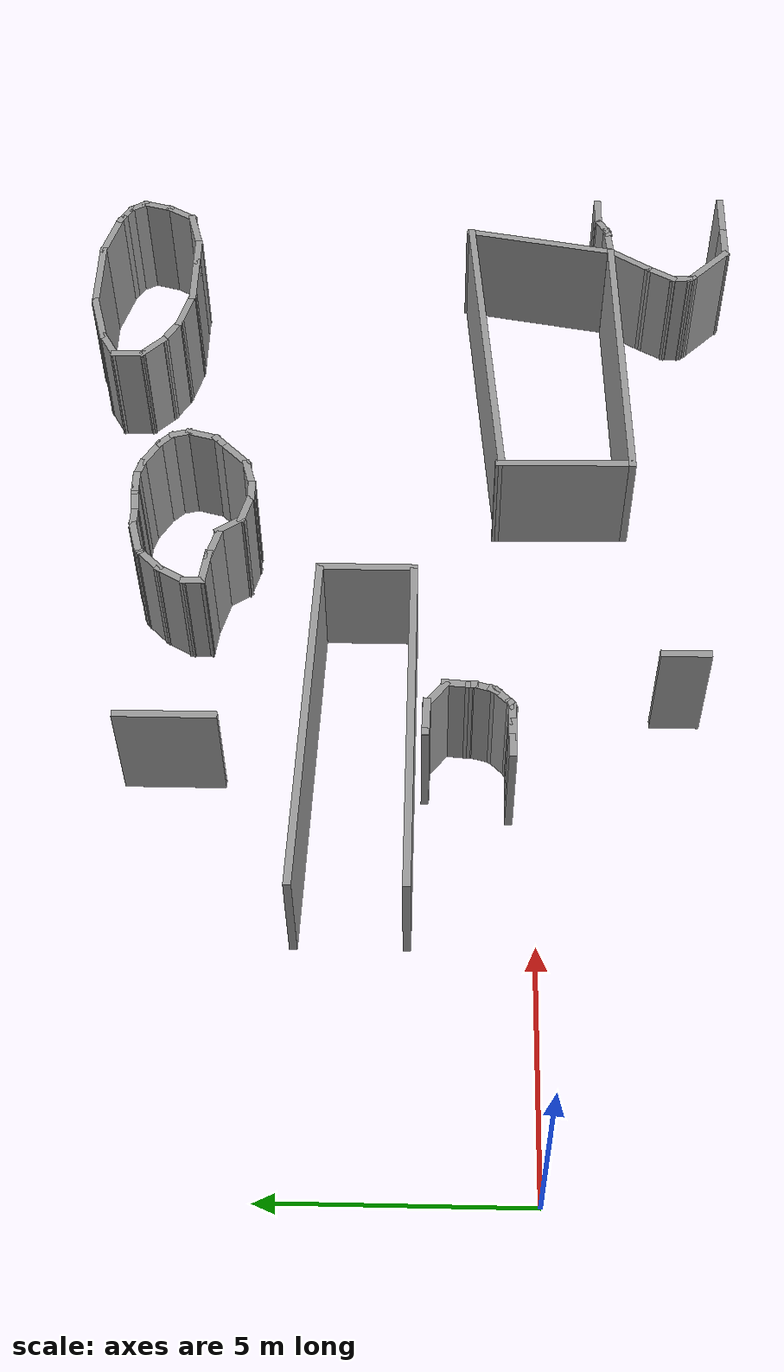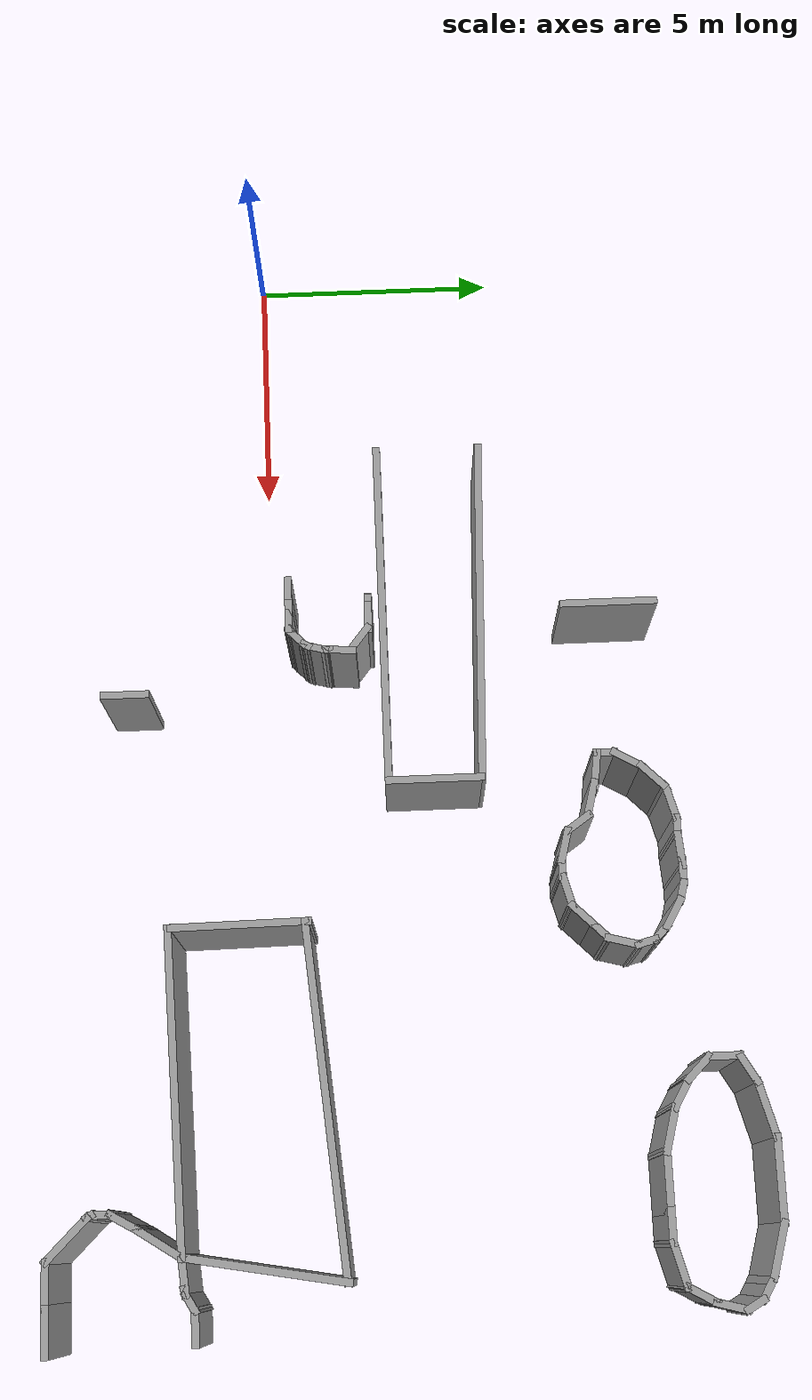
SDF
<sdf version="1.7">
 <model name="complex">
  <pose>10.9367 2.58093 0 0 -0 0</pose>
  <link name="Wall_189">
   <collision name="Wall_189_Collision">
    <geometry><box><size>2 0.15 2.5</size></box></geometry>
    <pose>0 0 1.25 0 -0 0</pose>
   </collision>
   <visual name="Wall_189_Visual">
    <pose>0 0 1.25 0 -0 0</pose>
    <geometry><box><size>2 0.15 2.5</size></box></geometry>
    <material>
     <script><uri>file://media/materials/scripts/gazebo.material</uri><name>Gazebo/Grey</name></script>
     <ambient>1 1 1 1</ambient>
    </material>
    <meta><layer>0</layer></meta>
   </visual>
   <pose>-2.45459 4.47638 0 0 -0 1.5708</pose>
  </link>
  <link name="Wall_193">
   <collision name="Wall_193_Collision">
    <geometry><box><size>7.25 0.15 2.5</size></box></geometry>
    <pose>0 0 1.25 0 -0 0</pose>
   </collision>
   <visual name="Wall_193_Visual">
    <pose>0 0 1.25 0 -0 0</pose>
    <geometry><box><size>7.25 0.15 2.5</size></box></geometry>
    <material>
     <script><uri>file://media/materials/scripts/gazebo.material</uri><name>Gazebo/Grey</name></script>
     <ambient>1 1 1 1</ambient>
    </material>
    <meta><layer>0</layer></meta>
   </visual>
   <pose>-2.42278 -0.165825 0 0 -0 0</pose>
  </link>
  <link name="Wall_194">
   <collision name="Wall_194_Collision">
    <geometry><box><size>2.00149 0.15 2.5</size></box></geometry>
    <pose>0 0 1.25 0 -0 0</pose>
   </collision>
   <visual name="Wall_194_Visual">
    <pose>0 0 1.25 0 -0 0</pose>
    <geometry><box><size>2.00149 0.15 2.5</size></box></geometry>
    <material>
     <script><uri>file://media/materials/scripts/gazebo.material</uri><name>Gazebo/Grey</name></script>
     <ambient>1 1 1 1</ambient>
    </material>
    <meta><layer>0</layer></meta>
   </visual>
   <pose>1.12722 0.759918 0 0 -0 1.5708</pose>
  </link>
  <link name="Wall_195">
   <collision name="Wall_195_Collision">
    <geometry><box><size>7.2544 0.15 2.5</size></box></geometry>
    <pose>0 0 1.25 0 -0 0</pose>
   </collision>
   <visual name="Wall_195_Visual">
    <pose>0 0 1.25 0 -0 0</pose>
    <geometry><box><size>7.2544 0.15 2.5</size></box></geometry>
    <material>
     <script><uri>file://media/materials/scripts/gazebo.material</uri><name>Gazebo/Grey</name></script>
     <ambient>1 1 1 1</ambient>
    </material>
    <meta><layer>0</layer></meta>
   </visual>
   <pose>-2.42278 1.83551 0 0 -0 3.1064</pose>
  </link>
  <link name="Wall_206">
   <collision name="Wall_206_Collision">
    <geometry><box><size>0.5 0.15 2.5</size></box></geometry>
    <pose>0 0 1.25 0 -0 0</pose>
   </collision>
   <visual name="Wall_206_Visual">
    <pose>0 0 1.25 0 -0 0</pose>
    <geometry><box><size>0.5 0.15 2.5</size></box></geometry>
    <material>
     <script><uri>file://media/materials/scripts/gazebo.material</uri><name>Gazebo/Grey</name></script>
     <ambient>1 1 1 1</ambient>
    </material>
    <meta><layer>0</layer></meta>
   </visual>
   <pose>-3.0152 -2.08625 0 0 -0 0</pose>
  </link>
  <link name="Wall_207">
   <collision name="Wall_207_Collision">
    <geometry><box><size>0.5 0.15 2.5</size></box></geometry>
    <pose>0 0 1.25 0 -0 0</pose>
   </collision>
   <visual name="Wall_207_Visual">
    <pose>0 0 1.25 0 -0 0</pose>
    <geometry><box><size>0.5 0.15 2.5</size></box></geometry>
    <material>
     <script><uri>file://media/materials/scripts/gazebo.material</uri><name>Gazebo/Grey</name></script>
     <ambient>1 1 1 1</ambient>
    </material>
    <meta><layer>0</layer></meta>
   </visual>
   <pose>-2.6652 -2.08625 0 0 -0 0</pose>
  </link>
  <link name="Wall_208">
   <collision name="Wall_208_Collision">
    <geometry><box><size>0.5 0.15 2.5</size></box></geometry>
    <pose>0 0 1.25 0 -0 0</pose>
   </collision>
   <visual name="Wall_208_Visual">
    <pose>0 0 1.25 0 -0 0</pose>
    <geometry><box><size>0.5 0.15 2.5</size></box></geometry>
    <material>
     <script><uri>file://media/materials/scripts/gazebo.material</uri><name>Gazebo/Grey</name></script>
     <ambient>1 1 1 1</ambient>
    </material>
    <meta><layer>0</layer></meta>
   </visual>
   <pose>-2.3152 -2.08625 0 0 -0 0</pose>
  </link>
  <link name="Wall_209">
   <collision name="Wall_209_Collision">
    <geometry><box><size>0.25 0.15 2.5</size></box></geometry>
    <pose>0 0 1.25 0 -0 0</pose>
   </collision>
   <visual name="Wall_209_Visual">
    <pose>0 0 1.25 0 -0 0</pose>
    <geometry><box><size>0.25 0.15 2.5</size></box></geometry>
    <material>
     <script><uri>file://media/materials/scripts/gazebo.material</uri><name>Gazebo/Grey</name></script>
     <ambient>1 1 1 1</ambient>
    </material>
    <meta><layer>0</layer></meta>
   </visual>
   <pose>-2.0969 -2.06125 0 0 -0 0.523599</pose>
  </link>
  <link name="Wall_210">
   <collision name="Wall_210_Collision">
    <geometry><box><size>0.5 0.15 2.5</size></box></geometry>
    <pose>0 0 1.25 0 -0 0</pose>
   </collision>
   <visual name="Wall_210_Visual">
    <pose>0 0 1.25 0 -0 0</pose>
    <geometry><box><size>0.5 0.15 2.5</size></box></geometry>
    <material>
     <script><uri>file://media/materials/scripts/gazebo.material</uri><name>Gazebo/Grey</name></script>
     <ambient>1 1 1 1</ambient>
    </material>
    <meta><layer>0</layer></meta>
   </visual>
   <pose>-1.92986 -1.91251 0 0 -0 0.785398</pose>
  </link>
  <link name="Wall_211">
   <collision name="Wall_211_Collision">
    <geometry><box><size>0.25 0.15 2.5</size></box></geometry>
    <pose>0 0 1.25 0 -0 0</pose>
   </collision>
   <visual name="Wall_211_Visual">
    <pose>0 0 1.25 0 -0 0</pose>
    <geometry><box><size>0.25 0.15 2.5</size></box></geometry>
    <material>
     <script><uri>file://media/materials/scripts/gazebo.material</uri><name>Gazebo/Grey</name></script>
     <ambient>1 1 1 1</ambient>
    </material>
    <meta><layer>0</layer></meta>
   </visual>
   <pose>-1.78111 -1.74546 0 0 -0 1.0472</pose>
  </link>
  <link name="Wall_212">
   <collision name="Wall_212_Collision">
    <geometry><box><size>0.5 0.15 2.5</size></box></geometry>
    <pose>0 0 1.25 0 -0 0</pose>
   </collision>
   <visual name="Wall_212_Visual">
    <pose>0 0 1.25 0 -0 0</pose>
    <geometry><box><size>0.5 0.15 2.5</size></box></geometry>
    <material>
     <script><uri>file://media/materials/scripts/gazebo.material</uri><name>Gazebo/Grey</name></script>
     <ambient>1 1 1 1</ambient>
    </material>
    <meta><layer>0</layer></meta>
   </visual>
   <pose>-1.71082 -1.53313 0 0 -0 1.309</pose>
  </link>
  <link name="Wall_213">
   <collision name="Wall_213_Collision">
    <geometry><box><size>0.15 0.15 2.5</size></box></geometry>
    <pose>0 0 1.25 0 -0 0</pose>
   </collision>
   <visual name="Wall_213_Visual">
    <pose>0 0 1.25 0 -0 0</pose>
    <geometry><box><size>0.15 0.15 2.5</size></box></geometry>
    <material>
     <script><uri>file://media/materials/scripts/gazebo.material</uri><name>Gazebo/Grey</name></script>
     <ambient>1 1 1 1</ambient>
    </material>
    <meta><layer>0</layer></meta>
   </visual>
   <pose>-1.66553 -1.36409 0 0 -0 0</pose>
  </link>
  <link name="Wall_214">
   <collision name="Wall_214_Collision">
    <geometry><box><size>0.25 0.15 2.5</size></box></geometry>
    <pose>0 0 1.25 0 -0 0</pose>
   </collision>
   <visual name="Wall_214_Visual">
    <pose>0 0 1.25 0 -0 0</pose>
    <geometry><box><size>0.25 0.15 2.5</size></box></geometry>
    <material>
     <script><uri>file://media/materials/scripts/gazebo.material</uri><name>Gazebo/Grey</name></script>
     <ambient>1 1 1 1</ambient>
    </material>
    <meta><layer>0</layer></meta>
   </visual>
   <pose>-1.66553 -1.31409 0 0 -0 1.5708</pose>
  </link>
  <link name="Wall_215">
   <collision name="Wall_215_Collision">
    <geometry><box><size>0.612805 0.15 2.5</size></box></geometry>
    <pose>0 0 1.25 0 -0 0</pose>
   </collision>
   <visual name="Wall_215_Visual">
    <pose>0 0 1.25 0 -0 0</pose>
    <geometry><box><size>0.612805 0.15 2.5</size></box></geometry>
    <material>
     <script><uri>file://media/materials/scripts/gazebo.material</uri><name>Gazebo/Grey</name></script>
     <ambient>1 1 1 1</ambient>
    </material>
    <meta><layer>0</layer></meta>
   </visual>
   <pose>-1.64904 -1.03327 0 0 -0 1.4995</pose>
  </link>
  <link name="Wall_216">
   <collision name="Wall_216_Collision">
    <geometry><box><size>0.698828 0.15 2.5</size></box></geometry>
    <pose>0 0 1.25 0 -0 0</pose>
   </collision>
   <visual name="Wall_216_Visual">
    <pose>0 0 1.25 0 -0 0</pose>
    <geometry><box><size>0.698828 0.15 2.5</size></box></geometry>
    <material>
     <script><uri>file://media/materials/scripts/gazebo.material</uri><name>Gazebo/Grey</name></script>
     <ambient>1 1 1 1</ambient>
    </material>
    <meta><layer>0</layer></meta>
   </visual>
   <pose>-1.88619 -0.646281 0 0 -0 2.48028</pose>
  </link>
  <link name="Wall_217">
   <collision name="Wall_217_Collision">
    <geometry><box><size>0.84448 0.15 2.5</size></box></geometry>
    <pose>0 0 1.25 0 -0 0</pose>
   </collision>
   <visual name="Wall_217_Visual">
    <pose>0 0 1.25 0 -0 0</pose>
    <geometry><box><size>0.84448 0.15 2.5</size></box></geometry>
    <material>
     <script><uri>file://media/materials/scripts/gazebo.material</uri><name>Gazebo/Grey</name></script>
     <ambient>1 1 1 1</ambient>
    </material>
    <meta><layer>0</layer></meta>
   </visual>
   <pose>-2.41283 -0.457246 0 0 -0 3.11813</pose>
  </link>
  <link name="Wall_218">
   <collision name="Wall_218_Collision">
    <geometry><box><size>0.15 0.15 2.5</size></box></geometry>
    <pose>0 0 1.25 0 -0 0</pose>
   </collision>
   <visual name="Wall_218_Visual">
    <pose>0 0 1.25 0 -0 0</pose>
    <geometry><box><size>0.15 0.15 2.5</size></box></geometry>
    <material>
     <script><uri>file://media/materials/scripts/gazebo.material</uri><name>Gazebo/Grey</name></script>
     <ambient>1 1 1 1</ambient>
    </material>
    <meta><layer>0</layer></meta>
   </visual>
   <pose>-2.74762 -0.4491 0 0 -0 0</pose>
  </link>
  <link name="Wall_253">
   <collision name="Wall_253_Collision">
    <geometry><box><size>1 0.15 2.5</size></box></geometry>
    <pose>0 0 1.25 0 -0 0</pose>
   </collision>
   <visual name="Wall_253_Visual">
    <pose>0 0 1.25 0 -0 0</pose>
    <geometry><box><size>1 0.15 2.5</size></box></geometry>
    <material>
     <script><uri>file://media/materials/scripts/gazebo.material</uri><name>Gazebo/Grey</name></script>
     <ambient>1 1 1 1</ambient>
    </material>
    <meta><layer>0</layer></meta>
   </visual>
   <pose>-0.87009 -5.44602 0 0 -0 1.5708</pose>
  </link>
  <link name="Wall_256">
   <collision name="Wall_256_Collision">
    <geometry><box><size>2.85471 0.15 2.5</size></box></geometry>
    <pose>0 0 1.25 0 -0 0</pose>
   </collision>
   <visual name="Wall_256_Visual">
    <pose>0 0 1.25 0 -0 0</pose>
    <geometry><box><size>2.85471 0.15 2.5</size></box></geometry>
    <material>
     <script><uri>file://media/materials/scripts/gazebo.material</uri><name>Gazebo/Grey</name></script>
     <ambient>1 1 1 1</ambient>
    </material>
    <meta><layer>0</layer></meta>
   </visual>
   <pose>3.92275 -3.21571 0 0 -0 -1.55865</pose>
  </link>
  <link name="Wall_257">
   <collision name="Wall_257_Collision">
    <geometry><box><size>6.44796 0.15 2.5</size></box></geometry>
    <pose>0 0 1.25 0 -0 0</pose>
   </collision>
   <visual name="Wall_257_Visual">
    <pose>0 0 1.25 0 -0 0</pose>
    <geometry><box><size>6.44796 0.15 2.5</size></box></geometry>
    <material>
     <script><uri>file://media/materials/scripts/gazebo.material</uri><name>Gazebo/Grey</name></script>
     <ambient>1 1 1 1</ambient>
    </material>
    <meta><layer>0</layer></meta>
   </visual>
   <pose>7.086 -4.52178 0 0 -0 0.032582</pose>
  </link>
  <link name="Wall_258">
   <collision name="Wall_258_Collision">
    <geometry><box><size>3.32697 0.15 2.5</size></box></geometry>
    <pose>0 0 1.25 0 -0 0</pose>
   </collision>
   <visual name="Wall_258_Visual">
    <pose>0 0 1.25 0 -0 0</pose>
    <geometry><box><size>3.32697 0.15 2.5</size></box></geometry>
    <material>
     <script><uri>file://media/materials/scripts/gazebo.material</uri><name>Gazebo/Grey</name></script>
     <ambient>1 1 1 1</ambient>
    </material>
    <meta><layer>0</layer></meta>
   </visual>
   <pose>10.5205 -2.82841 0 0 -0 1.38869</pose>
  </link>
  <link name="Wall_259">
   <collision name="Wall_259_Collision">
    <geometry><box><size>7.0801 0.15 2.5</size></box></geometry>
    <pose>0 0 1.25 0 -0 0</pose>
   </collision>
   <visual name="Wall_259_Visual">
    <pose>0 0 1.25 0 -0 0</pose>
    <geometry><box><size>7.0801 0.15 2.5</size></box></geometry>
    <material>
     <script><uri>file://media/materials/scripts/gazebo.material</uri><name>Gazebo/Grey</name></script>
     <ambient>1 1 1 1</ambient>
    </material>
    <meta><layer>0</layer></meta>
   </visual>
   <pose>7.35724 -1.6073 0 0 -0 -3.05127</pose>
  </link>
  <link name="Wall_261">
   <collision name="Wall_261_Collision">
    <geometry><box><size>1.15263 0.15 2.5</size></box></geometry>
    <pose>0 0 1.25 0 -0 0</pose>
   </collision>
   <visual name="Wall_261_Visual">
    <pose>0 0 1.25 0 -0 0</pose>
    <geometry><box><size>1.15263 0.15 2.5</size></box></geometry>
    <material>
     <script><uri>file://media/materials/scripts/gazebo.material</uri><name>Gazebo/Grey</name></script>
     <ambient>1 1 1 1</ambient>
    </material>
    <meta><layer>0</layer></meta>
   </visual>
   <pose>9.95781 -4.83837 0 0 -0 -2.15143</pose>
  </link>
  <link name="Wall_262">
   <collision name="Wall_262_Collision">
    <geometry><box><size>0.75 0.15 2.5</size></box></geometry>
    <pose>0 0 1.25 0 -0 0</pose>
   </collision>
   <visual name="Wall_262_Visual">
    <pose>0 0 1.25 0 -0 0</pose>
    <geometry><box><size>0.75 0.15 2.5</size></box></geometry>
    <material>
     <script><uri>file://media/materials/scripts/gazebo.material</uri><name>Gazebo/Grey</name></script>
     <ambient>1 1 1 1</ambient>
    </material>
    <meta><layer>0</layer></meta>
   </visual>
   <pose>9.53281 -5.51733 0 0 -0 -2.0944</pose>
  </link>
  <link name="Wall_263">
   <collision name="Wall_263_Collision">
    <geometry><box><size>0.5 0.15 2.5</size></box></geometry>
    <pose>0 0 1.25 0 -0 0</pose>
   </collision>
   <visual name="Wall_263_Visual">
    <pose>0 0 1.25 0 -0 0</pose>
    <geometry><box><size>0.5 0.15 2.5</size></box></geometry>
    <material>
     <script><uri>file://media/materials/scripts/gazebo.material</uri><name>Gazebo/Grey</name></script>
     <ambient>1 1 1 1</ambient>
    </material>
    <meta><layer>0</layer></meta>
   </visual>
   <pose>9.38281 -5.95214 0 0 -0 -1.5708</pose>
  </link>
  <link name="Wall_264">
   <collision name="Wall_264_Collision">
    <geometry><box><size>0.25 0.15 2.5</size></box></geometry>
    <pose>0 0 1.25 0 -0 0</pose>
   </collision>
   <visual name="Wall_264_Visual">
    <pose>0 0 1.25 0 -0 0</pose>
    <geometry><box><size>0.25 0.15 2.5</size></box></geometry>
    <material>
     <script><uri>file://media/materials/scripts/gazebo.material</uri><name>Gazebo/Grey</name></script>
     <ambient>1 1 1 1</ambient>
    </material>
    <meta><layer>0</layer></meta>
   </visual>
   <pose>9.40781 -6.17044 0 0 -0 -1.0472</pose>
  </link>
  <link name="Wall_265">
   <collision name="Wall_265_Collision">
    <geometry><box><size>1.25 0.15 2.5</size></box></geometry>
    <pose>0 0 1.25 0 -0 0</pose>
   </collision>
   <visual name="Wall_265_Visual">
    <pose>0 0 1.25 0 -0 0</pose>
    <geometry><box><size>1.25 0.15 2.5</size></box></geometry>
    <material>
     <script><uri>file://media/materials/scripts/gazebo.material</uri><name>Gazebo/Grey</name></script>
     <ambient>1 1 1 1</ambient>
    </material>
    <meta><layer>0</layer></meta>
   </visual>
   <pose>9.82172 -6.60265 0 0 -0 -0.785398</pose>
  </link>
  <link name="Wall_266">
   <collision name="Wall_266_Collision">
    <geometry><box><size>1 0.15 2.5</size></box></geometry>
    <pose>0 0 1.25 0 -0 0</pose>
   </collision>
   <visual name="Wall_266_Visual">
    <pose>0 0 1.25 0 -0 0</pose>
    <geometry><box><size>1 0.15 2.5</size></box></geometry>
    <material>
     <script><uri>file://media/materials/scripts/gazebo.material</uri><name>Gazebo/Grey</name></script>
     <ambient>1 1 1 1</ambient>
    </material>
    <meta><layer>0</layer></meta>
   </visual>
   <pose>10.6356 -6.99156 0 0 -0 0</pose>
  </link>
  <link name="Wall_267">
   <collision name="Wall_267_Collision">
    <geometry><box><size>1 0.15 2.5</size></box></geometry>
    <pose>0 0 1.25 0 -0 0</pose>
   </collision>
   <visual name="Wall_267_Visual">
    <pose>0 0 1.25 0 -0 0</pose>
    <geometry><box><size>1 0.15 2.5</size></box></geometry>
    <material>
     <script><uri>file://media/materials/scripts/gazebo.material</uri><name>Gazebo/Grey</name></script>
     <ambient>1 1 1 1</ambient>
    </material>
    <meta><layer>0</layer></meta>
   </visual>
   <pose>11.4856 -6.99156 0 0 -0 0</pose>
  </link>
  <link name="Wall_278">
   <collision name="Wall_278_Collision">
    <geometry><box><size>0.75 0.15 2.5</size></box></geometry>
    <pose>0 0 1.25 0 -0 0</pose>
   </collision>
   <visual name="Wall_278_Visual">
    <pose>0 0 1.25 0 -0 0</pose>
    <geometry><box><size>0.75 0.15 2.5</size></box></geometry>
    <material>
     <script><uri>file://media/materials/scripts/gazebo.material</uri><name>Gazebo/Grey</name></script>
     <ambient>1 1 1 1</ambient>
    </material>
    <meta><layer>0</layer></meta>
   </visual>
   <pose>11.5097 -4.17625 0 0 -0 3.14159</pose>
  </link>
  <link name="Wall_279">
   <collision name="Wall_279_Collision">
    <geometry><box><size>0.5 0.15 2.5</size></box></geometry>
    <pose>0 0 1.25 0 -0 0</pose>
   </collision>
   <visual name="Wall_279_Visual">
    <pose>0 0 1.25 0 -0 0</pose>
    <geometry><box><size>0.5 0.15 2.5</size></box></geometry>
    <material>
     <script><uri>file://media/materials/scripts/gazebo.material</uri><name>Gazebo/Grey</name></script>
     <ambient>1 1 1 1</ambient>
    </material>
    <meta><layer>0</layer></meta>
   </visual>
   <pose>11.0581 -4.26375 0 0 -0 -2.61799</pose>
  </link>
  <link name="Wall_280">
   <collision name="Wall_280_Collision">
    <geometry><box><size>0.25 0.15 2.5</size></box></geometry>
    <pose>0 0 1.25 0 -0 0</pose>
   </collision>
   <visual name="Wall_280_Visual">
    <pose>0 0 1.25 0 -0 0</pose>
    <geometry><box><size>0.25 0.15 2.5</size></box></geometry>
    <material>
     <script><uri>file://media/materials/scripts/gazebo.material</uri><name>Gazebo/Grey</name></script>
     <ambient>1 1 1 1</ambient>
    </material>
    <meta><layer>0</layer></meta>
   </visual>
   <pose>10.8582 -4.36419 0 0 -0 -2.87979</pose>
  </link>
  <link name="Wall_282">
   <collision name="Wall_282_Collision">
    <geometry><box><size>0.827152 0.15 2.5</size></box></geometry>
    <pose>0 0 1.25 0 -0 0</pose>
   </collision>
   <visual name="Wall_282_Visual">
    <pose>0 0 1.25 0 -0 0</pose>
    <geometry><box><size>0.827152 0.15 2.5</size></box></geometry>
    <material>
     <script><uri>file://media/materials/scripts/gazebo.material</uri><name>Gazebo/Grey</name></script>
     <ambient>1 1 1 1</ambient>
    </material>
    <meta><layer>0</layer></meta>
   </visual>
   <pose>10.5697 -4.38523 0 0 -0 -3.04106</pose>
  </link>
  <link name="Wall_283">
   <collision name="Wall_283_Collision">
    <geometry><box><size>0.15 0.15 2.5</size></box></geometry>
    <pose>0 0 1.25 0 -0 0</pose>
   </collision>
   <visual name="Wall_283_Visual">
    <pose>0 0 1.25 0 -0 0</pose>
    <geometry><box><size>0.15 0.15 2.5</size></box></geometry>
    <material>
     <script><uri>file://media/materials/scripts/gazebo.material</uri><name>Gazebo/Grey</name></script>
     <ambient>1 1 1 1</ambient>
    </material>
    <meta><layer>0</layer></meta>
   </visual>
   <pose>10.2328 -4.41921 0 0 -0 0</pose>
  </link>
  <link name="Wall_286">
   <collision name="Wall_286_Collision">
    <geometry><box><size>0.5 0.15 2.5</size></box></geometry>
    <pose>0 0 1.25 0 -0 0</pose>
   </collision>
   <visual name="Wall_286_Visual">
    <pose>0 0 1.25 0 -0 0</pose>
    <geometry><box><size>0.5 0.15 2.5</size></box></geometry>
    <material>
     <script><uri>file://media/materials/scripts/gazebo.material</uri><name>Gazebo/Grey</name></script>
     <ambient>1 1 1 1</ambient>
    </material>
    <meta><layer>0</layer></meta>
   </visual>
   <pose>2.28812 5.53515 0 0 -0 3.14159</pose>
  </link>
  <link name="Wall_287">
   <collision name="Wall_287_Collision">
    <geometry><box><size>0.75 0.15 2.5</size></box></geometry>
    <pose>0 0 1.25 0 -0 0</pose>
   </collision>
   <visual name="Wall_287_Visual">
    <pose>0 0 1.25 0 -0 0</pose>
    <geometry><box><size>0.75 0.15 2.5</size></box></geometry>
    <material>
     <script><uri>file://media/materials/scripts/gazebo.material</uri><name>Gazebo/Grey</name></script>
     <ambient>1 1 1 1</ambient>
    </material>
    <meta><layer>0</layer></meta>
   </visual>
   <pose>1.82334 5.45751 0 0 -0 -2.87979</pose>
  </link>
  <link name="Wall_288">
   <collision name="Wall_288_Collision">
    <geometry><box><size>0.25 0.15 2.5</size></box></geometry>
    <pose>0 0 1.25 0 -0 0</pose>
   </collision>
   <visual name="Wall_288_Visual">
    <pose>0 0 1.25 0 -0 0</pose>
    <geometry><box><size>0.25 0.15 2.5</size></box></geometry>
    <material>
     <script><uri>file://media/materials/scripts/gazebo.material</uri><name>Gazebo/Grey</name></script>
     <ambient>1 1 1 1</ambient>
    </material>
    <meta><layer>0</layer></meta>
   </visual>
   <pose>1.49026 5.35486 0 0 -0 -2.61799</pose>
  </link>
  <link name="Wall_289">
   <collision name="Wall_289_Collision">
    <geometry><box><size>0.75 0.15 2.5</size></box></geometry>
    <pose>0 0 1.25 0 -0 0</pose>
   </collision>
   <visual name="Wall_289_Visual">
    <pose>0 0 1.25 0 -0 0</pose>
    <geometry><box><size>0.75 0.15 2.5</size></box></geometry>
    <material>
     <script><uri>file://media/materials/scripts/gazebo.material</uri><name>Gazebo/Grey</name></script>
     <ambient>1 1 1 1</ambient>
    </material>
    <meta><layer>0</layer></meta>
   </visual>
   <pose>1.23483 5.11773 0 0 -0 -2.35619</pose>
  </link>
  <link name="Wall_290">
   <collision name="Wall_290_Collision">
    <geometry><box><size>0.75 0.15 2.5</size></box></geometry>
    <pose>0 0 1.25 0 -0 0</pose>
   </collision>
   <visual name="Wall_290_Visual">
    <pose>0 0 1.25 0 -0 0</pose>
    <geometry><box><size>0.75 0.15 2.5</size></box></geometry>
    <material>
     <script><uri>file://media/materials/scripts/gazebo.material</uri><name>Gazebo/Grey</name></script>
     <ambient>1 1 1 1</ambient>
    </material>
    <meta><layer>0</layer></meta>
   </visual>
   <pose>0.872694 4.64579 0 0 -0 -2.0944</pose>
  </link>
  <link name="Wall_291">
   <collision name="Wall_291_Collision">
    <geometry><box><size>0.5 0.15 2.5</size></box></geometry>
    <pose>0 0 1.25 0 -0 0</pose>
   </collision>
   <visual name="Wall_291_Visual">
    <pose>0 0 1.25 0 -0 0</pose>
    <geometry><box><size>0.5 0.15 2.5</size></box></geometry>
    <material>
     <script><uri>file://media/materials/scripts/gazebo.material</uri><name>Gazebo/Grey</name></script>
     <ambient>1 1 1 1</ambient>
    </material>
    <meta><layer>0</layer></meta>
   </visual>
   <pose>0.722694 4.21098 0 0 -0 -1.5708</pose>
  </link>
  <link name="Wall_292">
   <collision name="Wall_292_Collision">
    <geometry><box><size>0.849073 0.15 2.5</size></box></geometry>
    <pose>0 0 1.25 0 -0 0</pose>
   </collision>
   <visual name="Wall_292_Visual">
    <pose>0 0 1.25 0 -0 0</pose>
    <geometry><box><size>0.849073 0.15 2.5</size></box></geometry>
    <material>
     <script><uri>file://media/materials/scripts/gazebo.material</uri><name>Gazebo/Grey</name></script>
     <ambient>1 1 1 1</ambient>
    </material>
    <meta><layer>0</layer></meta>
   </visual>
   <pose>1.06951 3.99248 0 0 -0 -0.124789</pose>
  </link>
  <link name="Wall_293">
   <collision name="Wall_293_Collision">
    <geometry><box><size>0.75 0.15 2.5</size></box></geometry>
    <pose>0 0 1.25 0 -0 0</pose>
   </collision>
   <visual name="Wall_293_Visual">
    <pose>0 0 1.25 0 -0 0</pose>
    <geometry><box><size>0.75 0.15 2.5</size></box></geometry>
    <material>
     <script><uri>file://media/materials/scripts/gazebo.material</uri><name>Gazebo/Grey</name></script>
     <ambient>1 1 1 1</ambient>
    </material>
    <meta><layer>0</layer></meta>
   </visual>
   <pose>1.61967 3.87133 0 0 -0 -0.261799</pose>
  </link>
  <link name="Wall_294">
   <collision name="Wall_294_Collision">
    <geometry><box><size>0.680683 0.15 2.5</size></box></geometry>
    <pose>0 0 1.25 0 -0 0</pose>
   </collision>
   <visual name="Wall_294_Visual">
    <pose>0 0 1.25 0 -0 0</pose>
    <geometry><box><size>0.680683 0.15 2.5</size></box></geometry>
    <material>
     <script><uri>file://media/materials/scripts/gazebo.material</uri><name>Gazebo/Grey</name></script>
     <ambient>1 1 1 1</ambient>
    </material>
    <meta><layer>0</layer></meta>
   </visual>
   <pose>2.14709 3.57563 0 0 -0 -0.964496</pose>
  </link>
  <link name="Wall_295">
   <collision name="Wall_295_Collision">
    <geometry><box><size>0.75 0.15 2.5</size></box></geometry>
    <pose>0 0 1.25 0 -0 0</pose>
   </collision>
   <visual name="Wall_295_Visual">
    <pose>0 0 1.25 0 -0 0</pose>
    <geometry><box><size>0.75 0.15 2.5</size></box></geometry>
    <material>
     <script><uri>file://media/materials/scripts/gazebo.material</uri><name>Gazebo/Grey</name></script>
     <ambient>1 1 1 1</ambient>
    </material>
    <meta><layer>0</layer></meta>
   </visual>
   <pose>2.58806 3.27994 0 0 -0 -0.261799</pose>
  </link>
  <link name="Wall_296">
   <collision name="Wall_296_Collision">
    <geometry><box><size>0.5 0.15 2.5</size></box></geometry>
    <pose>0 0 1.25 0 -0 0</pose>
   </collision>
   <visual name="Wall_296_Visual">
    <pose>0 0 1.25 0 -0 0</pose>
    <geometry><box><size>0.5 0.15 2.5</size></box></geometry>
    <material>
     <script><uri>file://media/materials/scripts/gazebo.material</uri><name>Gazebo/Grey</name></script>
     <ambient>1 1 1 1</ambient>
    </material>
    <meta><layer>0</layer></meta>
   </visual>
   <pose>3.05284 3.20229 0 0 -0 0</pose>
  </link>
  <link name="Wall_297">
   <collision name="Wall_297_Collision">
    <geometry><box><size>0.75 0.15 2.5</size></box></geometry>
    <pose>0 0 1.25 0 -0 0</pose>
   </collision>
   <visual name="Wall_297_Visual">
    <pose>0 0 1.25 0 -0 0</pose>
    <geometry><box><size>0.75 0.15 2.5</size></box></geometry>
    <material>
     <script><uri>file://media/materials/scripts/gazebo.material</uri><name>Gazebo/Grey</name></script>
     <ambient>1 1 1 1</ambient>
    </material>
    <meta><layer>0</layer></meta>
   </visual>
   <pose>3.51762 3.27994 0 0 -0 0.261799</pose>
  </link>
  <link name="Wall_298">
   <collision name="Wall_298_Collision">
    <geometry><box><size>0.75 0.15 2.5</size></box></geometry>
    <pose>0 0 1.25 0 -0 0</pose>
   </collision>
   <visual name="Wall_298_Visual">
    <pose>0 0 1.25 0 -0 0</pose>
    <geometry><box><size>0.75 0.15 2.5</size></box></geometry>
    <material>
     <script><uri>file://media/materials/scripts/gazebo.material</uri><name>Gazebo/Grey</name></script>
     <ambient>1 1 1 1</ambient>
    </material>
    <meta><layer>0</layer></meta>
   </visual>
   <pose>4.01953 3.56972 0 0 -0 0.785398</pose>
  </link>
  <link name="Wall_299">
   <collision name="Wall_299_Collision">
    <geometry><box><size>0.5 0.15 2.5</size></box></geometry>
    <pose>0 0 1.25 0 -0 0</pose>
   </collision>
   <visual name="Wall_299_Visual">
    <pose>0 0 1.25 0 -0 0</pose>
    <geometry><box><size>0.5 0.15 2.5</size></box></geometry>
    <material>
     <script><uri>file://media/materials/scripts/gazebo.material</uri><name>Gazebo/Grey</name></script>
     <ambient>1 1 1 1</ambient>
    </material>
    <meta><layer>0</layer></meta>
   </visual>
   <pose>4.35541 3.90559 0 0 -0 0.785398</pose>
  </link>
  <link name="Wall_300">
   <collision name="Wall_300_Collision">
    <geometry><box><size>0.75 0.15 2.5</size></box></geometry>
    <pose>0 0 1.25 0 -0 0</pose>
   </collision>
   <visual name="Wall_300_Visual">
    <pose>0 0 1.25 0 -0 0</pose>
    <geometry><box><size>0.75 0.15 2.5</size></box></geometry>
    <material>
     <script><uri>file://media/materials/scripts/gazebo.material</uri><name>Gazebo/Grey</name></script>
     <ambient>1 1 1 1</ambient>
    </material>
    <meta><layer>0</layer></meta>
   </visual>
   <pose>4.5568 4.31912 0 0 -0 1.309</pose>
  </link>
  <link name="Wall_301">
   <collision name="Wall_301_Collision">
    <geometry><box><size>0.5 0.15 2.5</size></box></geometry>
    <pose>0 0 1.25 0 -0 0</pose>
   </collision>
   <visual name="Wall_301_Visual">
    <pose>0 0 1.25 0 -0 0</pose>
    <geometry><box><size>0.5 0.15 2.5</size></box></geometry>
    <material>
     <script><uri>file://media/materials/scripts/gazebo.material</uri><name>Gazebo/Grey</name></script>
     <ambient>1 1 1 1</ambient>
    </material>
    <meta><layer>0</layer></meta>
   </visual>
   <pose>4.58915 4.77793 0 0 -0 1.8326</pose>
  </link>
  <link name="Wall_302">
   <collision name="Wall_302_Collision">
    <geometry><box><size>0.5 0.15 2.5</size></box></geometry>
    <pose>0 0 1.25 0 -0 0</pose>
   </collision>
   <visual name="Wall_302_Visual">
    <pose>0 0 1.25 0 -0 0</pose>
    <geometry><box><size>0.5 0.15 2.5</size></box></geometry>
    <material>
     <script><uri>file://media/materials/scripts/gazebo.material</uri><name>Gazebo/Grey</name></script>
     <ambient>1 1 1 1</ambient>
    </material>
    <meta><layer>0</layer></meta>
   </visual>
   <pose>4.42011 5.07071 0 0 -0 2.35619</pose>
  </link>
  <link name="Wall_303">
   <collision name="Wall_303_Collision">
    <geometry><box><size>0.75 0.15 2.5</size></box></geometry>
    <pose>0 0 1.25 0 -0 0</pose>
   </collision>
   <visual name="Wall_303_Visual">
    <pose>0 0 1.25 0 -0 0</pose>
    <geometry><box><size>0.75 0.15 2.5</size></box></geometry>
    <material>
     <script><uri>file://media/materials/scripts/gazebo.material</uri><name>Gazebo/Grey</name></script>
     <ambient>1 1 1 1</ambient>
    </material>
    <meta><layer>0</layer></meta>
   </visual>
   <pose>4.03656 5.34445 0 0 -0 2.61799</pose>
  </link>
  <link name="Wall_304">
   <collision name="Wall_304_Collision">
    <geometry><box><size>0.5 0.15 2.5</size></box></geometry>
    <pose>0 0 1.25 0 -0 0</pose>
   </collision>
   <visual name="Wall_304_Visual">
    <pose>0 0 1.25 0 -0 0</pose>
    <geometry><box><size>0.5 0.15 2.5</size></box></geometry>
    <material>
     <script><uri>file://media/materials/scripts/gazebo.material</uri><name>Gazebo/Grey</name></script>
     <ambient>1 1 1 1</ambient>
    </material>
    <meta><layer>0</layer></meta>
   </visual>
   <pose>3.60771 5.53975 0 0 -0 2.87979</pose>
  </link>
  <link name="Wall_305">
   <collision name="Wall_305_Collision">
    <geometry><box><size>0.5 0.15 2.5</size></box></geometry>
    <pose>0 0 1.25 0 -0 0</pose>
   </collision>
   <visual name="Wall_305_Visual">
    <pose>0 0 1.25 0 -0 0</pose>
    <geometry><box><size>0.5 0.15 2.5</size></box></geometry>
    <material>
     <script><uri>file://media/materials/scripts/gazebo.material</uri><name>Gazebo/Grey</name></script>
     <ambient>1 1 1 1</ambient>
    </material>
    <meta><layer>0</layer></meta>
   </visual>
   <pose>3.26368 5.58504 0 0 -0 3.14159</pose>
  </link>
  <link name="Wall_306">
   <collision name="Wall_306_Collision">
    <geometry><box><size>0.25 0.15 2.5</size></box></geometry>
    <pose>0 0 1.25 0 -0 0</pose>
   </collision>
   <visual name="Wall_306_Visual">
    <pose>0 0 1.25 0 -0 0</pose>
    <geometry><box><size>0.25 0.15 2.5</size></box></geometry>
    <material>
     <script><uri>file://media/materials/scripts/gazebo.material</uri><name>Gazebo/Grey</name></script>
     <ambient>1 1 1 1</ambient>
    </material>
    <meta><layer>0</layer></meta>
   </visual>
   <pose>3.03868 5.58504 0 0 -0 3.14159</pose>
  </link>
  <link name="Wall_308">
   <collision name="Wall_308_Collision">
    <geometry><box><size>0.777547 0.15 2.5</size></box></geometry>
    <pose>0 0 1.25 0 -0 0</pose>
   </collision>
   <visual name="Wall_308_Visual">
    <pose>0 0 1.25 0 -0 0</pose>
    <geometry><box><size>0.777547 0.15 2.5</size></box></geometry>
    <material>
     <script><uri>file://media/materials/scripts/gazebo.material</uri><name>Gazebo/Grey</name></script>
     <ambient>1 1 1 1</ambient>
    </material>
    <meta><layer>0</layer></meta>
   </visual>
   <pose>2.7759 5.5601 0 0 -0 -3.06201</pose>
  </link>
  <link name="Wall_310">
   <collision name="Wall_310_Collision">
    <geometry><box><size>1.75 0.15 2.5</size></box></geometry>
    <pose>0 0 1.25 0 -0 0</pose>
   </collision>
   <visual name="Wall_310_Visual">
    <pose>0 0 1.25 0 -0 0</pose>
    <geometry><box><size>1.75 0.15 2.5</size></box></geometry>
    <material>
     <script><uri>file://media/materials/scripts/gazebo.material</uri><name>Gazebo/Grey</name></script>
     <ambient>1 1 1 1</ambient>
    </material>
    <meta><layer>0</layer></meta>
   </visual>
   <pose>9.25094 7.00502 0 0 -0 3.14159</pose>
  </link>
  <link name="Wall_311">
   <collision name="Wall_311_Collision">
    <geometry><box><size>1.25 0.15 2.5</size></box></geometry>
    <pose>0 0 1.25 0 -0 0</pose>
   </collision>
   <visual name="Wall_311_Visual">
    <pose>0 0 1.25 0 -0 0</pose>
    <geometry><box><size>1.25 0.15 2.5</size></box></geometry>
    <material>
     <script><uri>file://media/materials/scripts/gazebo.material</uri><name>Gazebo/Grey</name></script>
     <ambient>1 1 1 1</ambient>
    </material>
    <meta><layer>0</layer></meta>
   </visual>
   <pose>7.91968 6.86267 0 0 -0 -2.87979</pose>
  </link>
  <link name="Wall_312">
   <collision name="Wall_312_Collision">
    <geometry><box><size>0.75 0.15 2.5</size></box></geometry>
    <pose>0 0 1.25 0 -0 0</pose>
   </collision>
   <visual name="Wall_312_Visual">
    <pose>0 0 1.25 0 -0 0</pose>
    <geometry><box><size>0.75 0.15 2.5</size></box></geometry>
    <material>
     <script><uri>file://media/materials/scripts/gazebo.material</uri><name>Gazebo/Grey</name></script>
     <ambient>1 1 1 1</ambient>
    </material>
    <meta><layer>0</layer></meta>
   </visual>
   <pose>7.12862 6.57032 0 0 -0 -2.61799</pose>
  </link>
  <link name="Wall_313">
   <collision name="Wall_313_Collision">
    <geometry><box><size>0.75 0.15 2.5</size></box></geometry>
    <pose>0 0 1.25 0 -0 0</pose>
   </collision>
   <visual name="Wall_313_Visual">
    <pose>0 0 1.25 0 -0 0</pose>
    <geometry><box><size>0.75 0.15 2.5</size></box></geometry>
    <material>
     <script><uri>file://media/materials/scripts/gazebo.material</uri><name>Gazebo/Grey</name></script>
     <ambient>1 1 1 1</ambient>
    </material>
    <meta><layer>0</layer></meta>
   </visual>
   <pose>6.86881 6.12032 0 0 -0 -1.5708</pose>
  </link>
  <link name="Wall_314">
   <collision name="Wall_314_Collision">
    <geometry><box><size>0.75 0.15 2.5</size></box></geometry>
    <pose>0 0 1.25 0 -0 0</pose>
   </collision>
   <visual name="Wall_314_Visual">
    <pose>0 0 1.25 0 -0 0</pose>
    <geometry><box><size>0.75 0.15 2.5</size></box></geometry>
    <material>
     <script><uri>file://media/materials/scripts/gazebo.material</uri><name>Gazebo/Grey</name></script>
     <ambient>1 1 1 1</ambient>
    </material>
    <meta><layer>0</layer></meta>
   </visual>
   <pose>7.08094 5.60819 0 0 -0 -0.785398</pose>
  </link>
  <link name="Wall_315">
   <collision name="Wall_315_Collision">
    <geometry><box><size>0.75 0.15 2.5</size></box></geometry>
    <pose>0 0 1.25 0 -0 0</pose>
   </collision>
   <visual name="Wall_315_Visual">
    <pose>0 0 1.25 0 -0 0</pose>
    <geometry><box><size>0.75 0.15 2.5</size></box></geometry>
    <material>
     <script><uri>file://media/materials/scripts/gazebo.material</uri><name>Gazebo/Grey</name></script>
     <ambient>1 1 1 1</ambient>
    </material>
    <meta><layer>0</layer></meta>
   </visual>
   <pose>7.55288 5.24606 0 0 -0 -0.523599</pose>
  </link>
  <link name="Wall_316">
   <collision name="Wall_316_Collision">
    <geometry><box><size>1 0.15 2.5</size></box></geometry>
    <pose>0 0 1.25 0 -0 0</pose>
   </collision>
   <visual name="Wall_316_Visual">
    <pose>0 0 1.25 0 -0 0</pose>
    <geometry><box><size>1 0.15 2.5</size></box></geometry>
    <material>
     <script><uri>file://media/materials/scripts/gazebo.material</uri><name>Gazebo/Grey</name></script>
     <ambient>1 1 1 1</ambient>
    </material>
    <meta><layer>0</layer></meta>
   </visual>
   <pose>8.22321 4.98606 0 0 -0 -0.261799</pose>
  </link>
  <link name="Wall_317">
   <collision name="Wall_317_Collision">
    <geometry><box><size>1.25 0.15 2.5</size></box></geometry>
    <pose>0 0 1.25 0 -0 0</pose>
   </collision>
   <visual name="Wall_317_Visual">
    <pose>0 0 1.25 0 -0 0</pose>
    <geometry><box><size>1.25 0.15 2.5</size></box></geometry>
    <material>
     <script><uri>file://media/materials/scripts/gazebo.material</uri><name>Gazebo/Grey</name></script>
     <ambient>1 1 1 1</ambient>
    </material>
    <meta><layer>0</layer></meta>
   </visual>
   <pose>9.18373 4.87606 0 0 -0 0</pose>
  </link>
  <link name="Wall_318">
   <collision name="Wall_318_Collision">
    <geometry><box><size>0.75 0.15 2.5</size></box></geometry>
    <pose>0 0 1.25 0 -0 0</pose>
   </collision>
   <visual name="Wall_318_Visual">
    <pose>0 0 1.25 0 -0 0</pose>
    <geometry><box><size>0.75 0.15 2.5</size></box></geometry>
    <material>
     <script><uri>file://media/materials/scripts/gazebo.material</uri><name>Gazebo/Grey</name></script>
     <ambient>1 1 1 1</ambient>
    </material>
    <meta><layer>0</layer></meta>
   </visual>
   <pose>10.0337 4.87606 0 0 -0 0</pose>
  </link>
  <link name="Wall_319">
   <collision name="Wall_319_Collision">
    <geometry><box><size>1 0.15 2.5</size></box></geometry>
    <pose>0 0 1.25 0 -0 0</pose>
   </collision>
   <visual name="Wall_319_Visual">
    <pose>0 0 1.25 0 -0 0</pose>
    <geometry><box><size>1 0.15 2.5</size></box></geometry>
    <material>
     <script><uri>file://media/materials/scripts/gazebo.material</uri><name>Gazebo/Grey</name></script>
     <ambient>1 1 1 1</ambient>
    </material>
    <meta><layer>0</layer></meta>
   </visual>
   <pose>10.7442 4.98606 0 0 -0 0.261799</pose>
  </link>
  <link name="Wall_320">
   <collision name="Wall_320_Collision">
    <geometry><box><size>0.75 0.15 2.5</size></box></geometry>
    <pose>0 0 1.25 0 -0 0</pose>
   </collision>
   <visual name="Wall_320_Visual">
    <pose>0 0 1.25 0 -0 0</pose>
    <geometry><box><size>0.75 0.15 2.5</size></box></geometry>
    <material>
     <script><uri>file://media/materials/scripts/gazebo.material</uri><name>Gazebo/Grey</name></script>
     <ambient>1 1 1 1</ambient>
    </material>
    <meta><layer>0</layer></meta>
   </visual>
   <pose>11.3048 5.35586 0 0 -0 1.0472</pose>
  </link>
  <link name="Wall_321">
   <collision name="Wall_321_Collision">
    <geometry><box><size>0.75 0.15 2.5</size></box></geometry>
    <pose>0 0 1.25 0 -0 0</pose>
   </collision>
   <visual name="Wall_321_Visual">
    <pose>0 0 1.25 0 -0 0</pose>
    <geometry><box><size>0.75 0.15 2.5</size></box></geometry>
    <material>
     <script><uri>file://media/materials/scripts/gazebo.material</uri><name>Gazebo/Grey</name></script>
     <ambient>1 1 1 1</ambient>
    </material>
    <meta><layer>0</layer></meta>
   </visual>
   <pose>11.5324 5.90545 0 0 -0 1.309</pose>
  </link>
  <link name="Wall_322">
   <collision name="Wall_322_Collision">
    <geometry><box><size>0.5 0.15 2.5</size></box></geometry>
    <pose>0 0 1.25 0 -0 0</pose>
   </collision>
   <visual name="Wall_322_Visual">
    <pose>0 0 1.25 0 -0 0</pose>
    <geometry><box><size>0.5 0.15 2.5</size></box></geometry>
    <material>
     <script><uri>file://media/materials/scripts/gazebo.material</uri><name>Gazebo/Grey</name></script>
     <ambient>1 1 1 1</ambient>
    </material>
    <meta><layer>0</layer></meta>
   </visual>
   <pose>11.5226 6.34678 0 0 -0 2.0944</pose>
  </link>
  <link name="Wall_323">
   <collision name="Wall_323_Collision">
    <geometry><box><size>0.5 0.15 2.5</size></box></geometry>
    <pose>0 0 1.25 0 -0 0</pose>
   </collision>
   <visual name="Wall_323_Visual">
    <pose>0 0 1.25 0 -0 0</pose>
    <geometry><box><size>0.5 0.15 2.5</size></box></geometry>
    <material>
     <script><uri>file://media/materials/scripts/gazebo.material</uri><name>Gazebo/Grey</name></script>
     <ambient>1 1 1 1</ambient>
    </material>
    <meta><layer>0</layer></meta>
   </visual>
   <pose>11.2835 6.58584 0 0 -0 2.61799</pose>
  </link>
  <link name="Wall_324">
   <collision name="Wall_324_Collision">
    <geometry><box><size>0.25 0.15 2.5</size></box></geometry>
    <pose>0 0 1.25 0 -0 0</pose>
   </collision>
   <visual name="Wall_324_Visual">
    <pose>0 0 1.25 0 -0 0</pose>
    <geometry><box><size>0.25 0.15 2.5</size></box></geometry>
    <material>
     <script><uri>file://media/materials/scripts/gazebo.material</uri><name>Gazebo/Grey</name></script>
     <ambient>1 1 1 1</ambient>
    </material>
    <meta><layer>0</layer></meta>
   </visual>
   <pose>11.0886 6.69834 0 0 -0 2.61799</pose>
  </link>
  <link name="Wall_325">
   <collision name="Wall_325_Collision">
    <geometry><box><size>1.18353 0.15 2.5</size></box></geometry>
    <pose>0 0 1.25 0 -0 0</pose>
   </collision>
   <visual name="Wall_325_Visual">
    <pose>0 0 1.25 0 -0 0</pose>
    <geometry><box><size>1.18353 0.15 2.5</size></box></geometry>
    <material>
     <script><uri>file://media/materials/scripts/gazebo.material</uri><name>Gazebo/Grey</name></script>
     <ambient>1 1 1 1</ambient>
    </material>
    <meta><layer>0</layer></meta>
   </visual>
   <pose>10.5481 6.86418 0 0 -0 2.86555</pose>
  </link>
  <static>1</static>
 </model>
</sdf>
